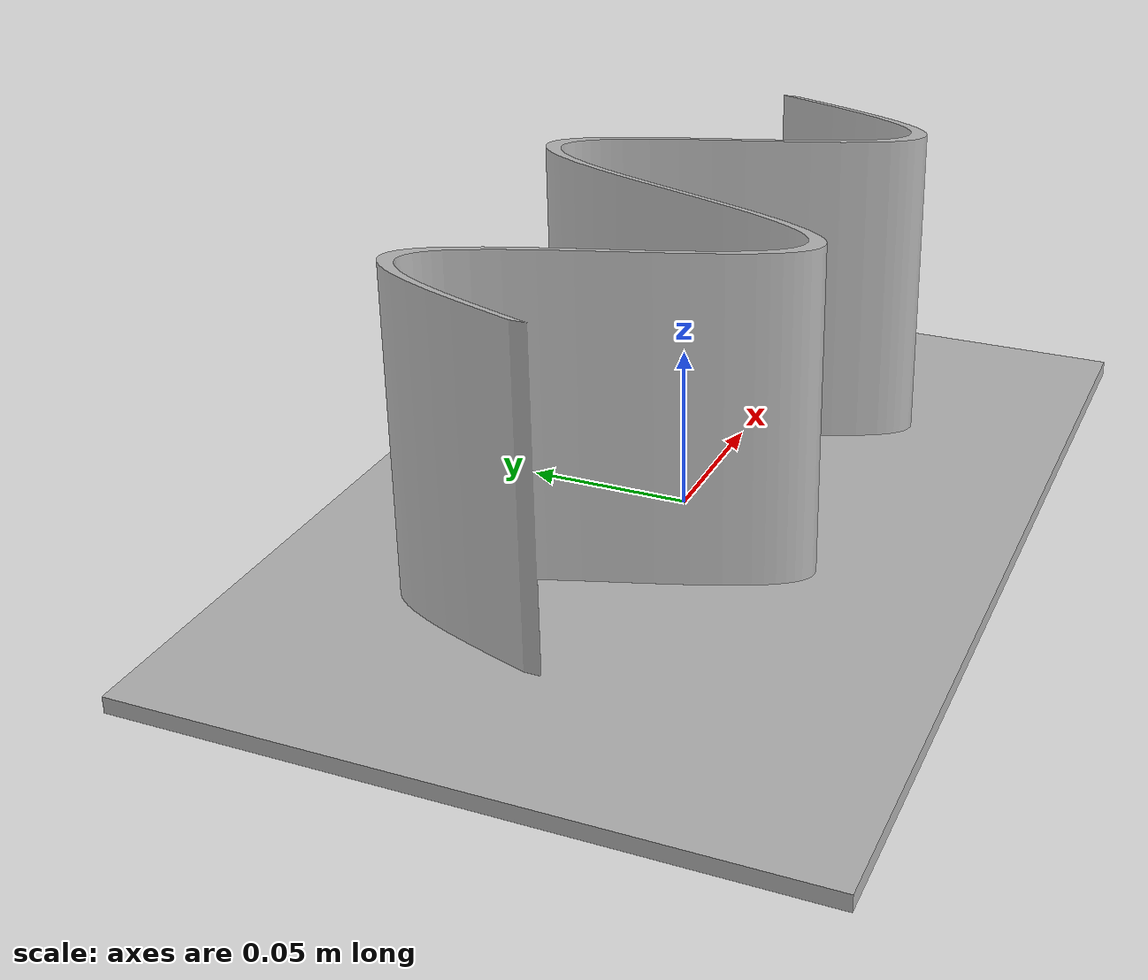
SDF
<?xml version="1.0" ?>
<sdf version="1.6">
  <model name="sin_model">
    <static>true</static>
    <link name="link">
      <collision name="collision">
        <geometry>
          <mesh>
            <scale>0.001 0.001 0.001</scale>
            <uri>model://sin_model/meshes/sin_model.stl</uri>
          </mesh>
        </geometry>
      </collision>
      <visual name="visual">
        <geometry>
          <mesh>
            <scale>0.001 0.001 0.001</scale>
            <uri>model://sin_model/meshes/sin_model.stl</uri>
          </mesh>
        </geometry>
      </visual>
    </link>
  </model>
</sdf>
